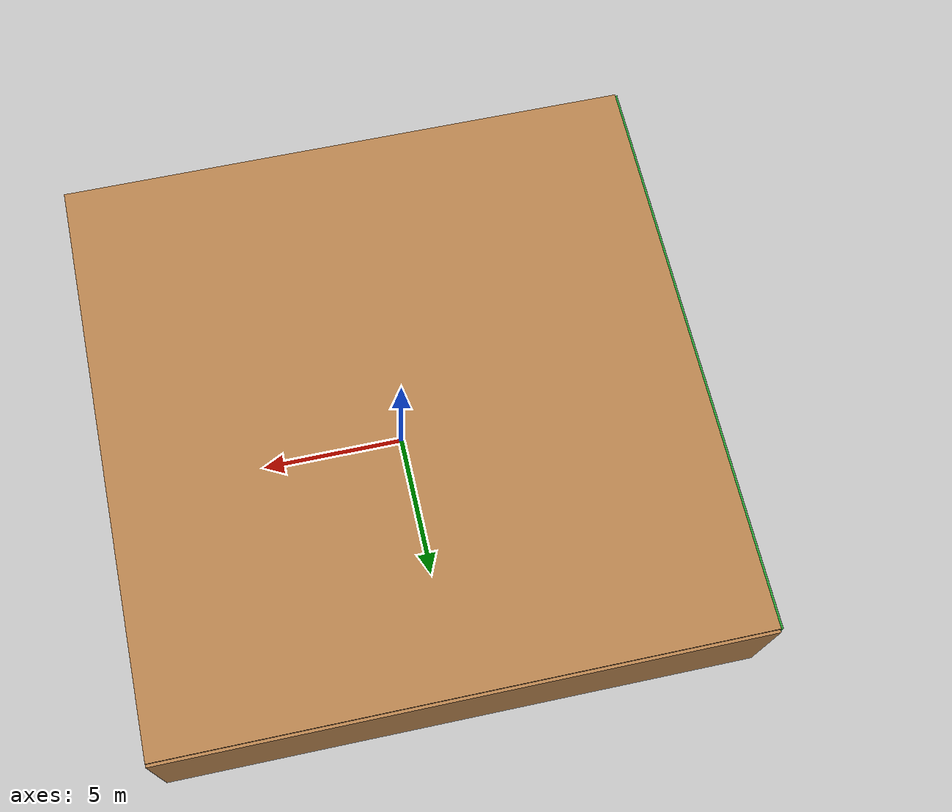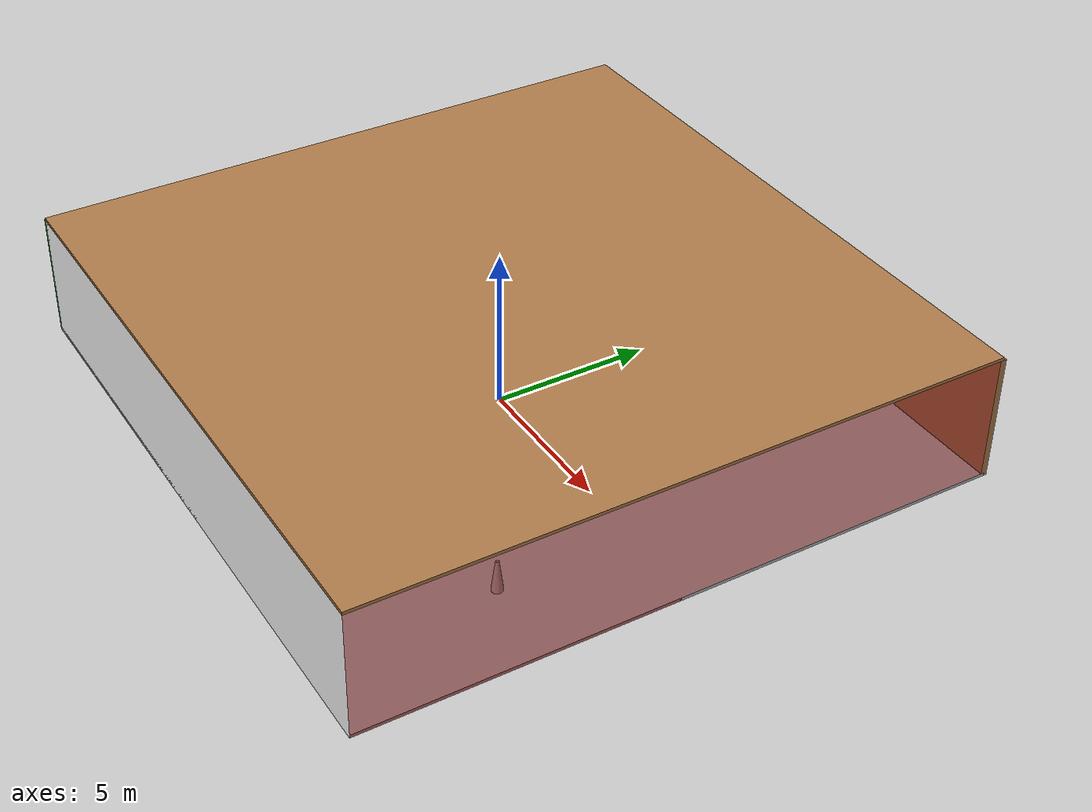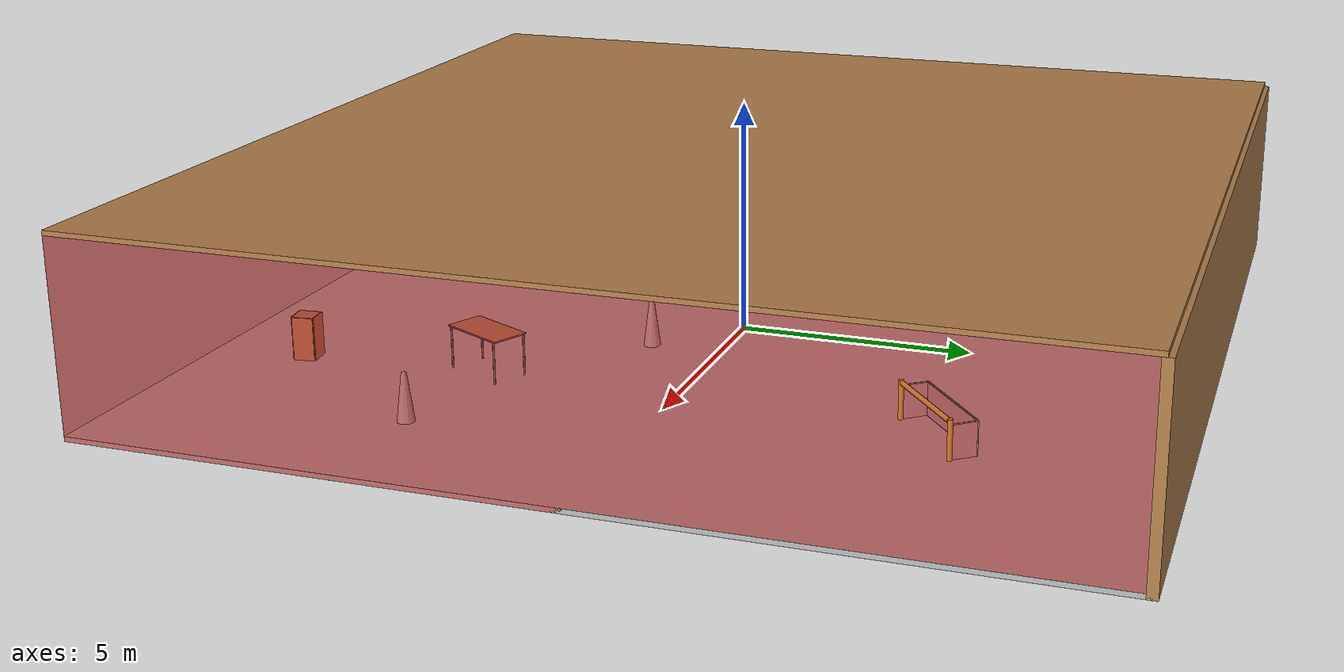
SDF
<sdf version="1.4">
 <world name="default">
  <physics type="ode">
   <max_step_size>0.001</max_step_size>
   <real_time_factor>1</real_time_factor>
   <real_time_update_rate>1000</real_time_update_rate>
   <gravity>0 0 -9.8</gravity>
  </physics>
  <scene><ambient>0.4 0.4 0.4 1</ambient><background>0.7 0.7 0.7 1</background><shadows>1</shadows></scene>
  <model name="Surrounding">
   <static>1</static>
   <link name="Ceiling">
    <collision name="Ceiling_Collision"><geometry><box><size>20 20 0.1</size></box></geometry></collision>
    <visual name="Ceiling_Visual">
     <geometry><box><size>20 20 0.1</size></box></geometry>
     <material>
      <script><uri>file://media/materials/scripts/gazebo.material</uri><name>Gazebo/WoodPallet</name></script>
     </material>
    </visual>
    <pose>0 0 4.05 0 0 0</pose>
   </link>
   <link name="Wall_South">
    <collision name="Wall_South_Collision">
     <geometry><box><size>20 0 4</size></box></geometry>
     <pose>0 0 2 0 -0 0</pose>
    </collision>
    <visual name="Wall_South_Visual">
     <pose>0 0 2 0 -0 0</pose>
     <geometry><box><size>20 0 4</size></box></geometry>
     <material>
      <script><uri>file://media/materials/scripts/gazebo.material</uri><name>Gazebo/White</name></script>
     </material>
    </visual>
    <velocity_decay><linear>0</linear><angular>0</angular></velocity_decay>
    <pose>0 -10 0 0 -0 0</pose>
   </link>
   <link name="Wall_East">
    <collision name="Wall_21_Collision">
     <geometry><box><size>20 0 4</size></box></geometry>
     <pose>0 0 2 0 -0 0</pose>
    </collision>
    <visual name="Wall_21_Visual">
     <pose>0 0 2 0 -0 0</pose>
     <geometry><box><size>20 0 4</size></box></geometry>
     <material>
      <script><uri>file://media/materials/scripts/gazebo.material</uri><name>Gazebo/RedTransparent</name></script>
     </material>
    </visual>
    <velocity_decay><linear>0</linear><angular>0</angular></velocity_decay>
    <pose>10 0 0 0 -0 1.5708</pose>
   </link>
   <link name="Wall_North">
    <collision name="Wall_22_Collision">
     <geometry><box><size>20 0.2 4</size></box></geometry>
     <pose>0 0 2 0 -0 0</pose>
    </collision>
    <visual name="Wall_22_Visual">
     <pose>0 0 2 0 -0 0</pose>
     <geometry><box><size>20 0.2 4</size></box></geometry>
     <material>
      <script><uri>file://media/materials/scripts/gazebo.material</uri><name>Gazebo/Wood</name></script>
     </material>
    </visual>
    <velocity_decay><linear>0</linear><angular>0</angular></velocity_decay>
    <pose>0 10 0 0 -0 0</pose>
   </link>
   <link name="Wall_West">
    <collision name="Wall_23_Collision">
     <geometry><box><size>20 0.2 4</size></box></geometry>
     <pose>0 0 2 0 -0 0</pose>
    </collision>
    <visual name="Wall_23_Visual">
     <pose>0 0 2 0 -0 0</pose>
     <geometry><box><size>20 0.2 4</size></box></geometry>
     <material>
      <script><uri>file://media/materials/scripts/gazebo.material</uri><name>Gazebo/GreenGlow</name></script>
     </material>
    </visual>
    <velocity_decay><linear>0</linear><angular>0</angular></velocity_decay>
    <pose>-10 0 0 0 0 -1.5708</pose>
   </link>
   <link name="Ground_link">
    <collision name="collision">
     <pose>0 0 .05 0 -0 0</pose>
     <geometry><box><size>20 20 0.1</size></box></geometry>
    </collision>
    <visual name="visual">
     <pose>0 0 .05 0 -0 0</pose>
     <geometry><box><size>20 20 0.1</size></box></geometry>
     <material>
      <script><uri>file://media/materials/scripts/gazebo.material</uri><name>Gazebo/PioneerBody</name></script>
     </material>
    </visual>
   </link>
   <static>1</static>
  </model>
  <spherical_coordinates>
   <surface_model>EARTH_WGS84</surface_model>
   <latitude_deg>0</latitude_deg>
   <longitude_deg>0</longitude_deg>
   <elevation>0</elevation>
   <heading_deg>0</heading_deg>
  </spherical_coordinates>
  <light name="lightball_0" type="diffuse">
   <diffuse>0.8 0.8 0.8 1</diffuse>
   <specular>0.2 0.2 0.2 1</specular>
   <attenuation>
    <range>100</range>
    <constant>0.7</constant>
    <linear>0.01</linear>
    <quadratic>0.001</quadratic>
   </attenuation>
   <direction>-0.5 0.1 -0.9</direction>
   <pose>-2.61369002726 -8.68001571329 0.714465781775 0 0 0</pose>
  </light>
  <light name="lightball_1" type="diffuse">
   <diffuse>0.8 0.8 0.8 1</diffuse>
   <specular>0.2 0.2 0.2 1</specular>
   <attenuation>
    <range>100</range>
    <constant>0.7</constant>
    <linear>0.01</linear>
    <quadratic>0.001</quadratic>
   </attenuation>
   <direction>-0.5 0.1 -0.9</direction>
   <pose>8.23953122427 -3.56995046801 1.92498026389 0 0 0</pose>
  </light>
  <light name="lightball_2" type="diffuse">
   <diffuse>0.8 0.8 0.8 1</diffuse>
   <specular>0.2 0.2 0.2 1</specular>
   <attenuation>
    <range>100</range>
    <constant>0.7</constant>
    <linear>0.01</linear>
    <quadratic>0.001</quadratic>
   </attenuation>
   <direction>-0.5 0.1 -0.9</direction>
   <pose>-0.43513747026 -2.27632188886 1.03621120318 0 0 0</pose>
  </light>
  <include>
   <uri>model://robocup_3Dsim_goal</uri>
   <pose>-5.1511036845 4.17481936942 0 0 0 2.41149934483</pose>
  </include>
  <include><uri>model://cabinet</uri><pose>-3.7573629436 7.29733963936 0 0 0 1.72283773038</pose></include>
  <include>
   <uri>model://construction_cone</uri>
   <pose>1.86869322656 -1.41889366155 0 0 0 0.342311457702</pose>
  </include>
  <include><uri>model://cabinet</uri><pose>4.77915331718 -7.90984728061 0 0 0 0.115229161559</pose></include>
  <include><uri>model://table</uri><pose>4.39593298325 -4.00001046037 0 0 0 1.11498066323</pose></include>
  <include>
   <uri>model://robocup_3Dsim_goal</uri>
   <pose>5.06773845349 5.21059801219 0 0 0 2.24621286787</pose>
  </include>
  <include>
   <uri>model://construction_cone</uri>
   <pose>7.30651725315 -4.32165454402 0 0 0 2.35676737805</pose>
  </include>
 </world>
</sdf>

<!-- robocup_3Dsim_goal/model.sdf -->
<sdf version="1.5">
  <model name="robocup_3d_goal">
    <static>true</static>
    <link name="left_post">
      <pose>0 1.05 0.45 0 0 0</pose>
      <collision name="collision">
        <geometry>
          <cylinder>
            <radius>0.05</radius>
            <length>0.9</length>
          </cylinder>
        </geometry>
      </collision>
      <visual name="visual">
        <geometry>
          <cylinder>
            <radius>0.05</radius>
            <length>0.9</length>
          </cylinder>
        </geometry>
        <material>
          <script>
            <uri>file://media/materials/scripts/gazebo.material</uri>
            <name>Gazebo/ZincYellow</name>
          </script>
        </material>
      </visual>
    </link>
    <link name="left_support_horiz_lower">
      <pose>0.30 1.05 0.01 0 0 0</pose>
      <collision name="collision">
        <geometry>
          <box>
            <size>0.50 0.02 0.02</size>
          </box>
        </geometry>
      </collision>
      <visual name="visual">
        <geometry>
          <box>
            <size>0.50 0.02 0.02</size>
          </box>
        </geometry>
        <material>
          <script>
            <uri>file://media/materials/scripts/gazebo.material</uri>
            <name>Gazebo/White</name>
          </script>
        </material>
      </visual>
    </link>
    <link name="left_support_horiz_upper">
      <pose>0.30 1.05 0.79 0 0 0</pose>
      <collision name="collision">
        <geometry>
          <box>
            <size>0.50 0.02 0.02</size>
          </box>
        </geometry>
      </collision>
      <visual name="visual">
        <geometry>
          <box>
            <size>0.50 0.02 0.02</size>
          </box>
        </geometry>
        <material>
          <script>
            <uri>file://media/materials/scripts/gazebo.material</uri>
            <name>Gazebo/White</name>
          </script>
        </material>
      </visual>
    </link>
    <link name="left_support_vertical">
      <pose>0.56 1.05 0.4 0 1.5708 0</pose>
      <collision name="collision">
        <geometry>
          <box>
            <size>0.80 0.02 0.02</size>
          </box>
        </geometry>
      </collision>
      <visual name="visual">
        <geometry>
          <box>
            <size>0.80 0.02 0.02</size>
          </box>
        </geometry>
        <material>
          <script>
            <uri>file://media/materials/scripts/gazebo.material</uri>
            <name>Gazebo/White</name>
          </script>
        </material>
      </visual>
    </link>
    <link name="right_support_horiz_lower">
      <pose>0.30 -1.05 0.01 0 0 0</pose>
      <collision name="collision">
        <geometry>
          <box>
            <size>0.50 0.02 0.02</size>
          </box>
        </geometry>
      </collision>
      <visual name="visual">
        <geometry>
          <box>
            <size>0.50 0.02 0.02</size>
          </box>
        </geometry>
        <material>
          <script>
            <uri>file://media/materials/scripts/gazebo.material</uri>
            <name>Gazebo/White</name>
          </script>
        </material>
      </visual>
    </link>
    <link name="right_support_horiz_upper">
      <pose>0.30 -1.05 0.79 0 0 0</pose>
      <collision name="collision">
        <geometry>
          <box>
            <size>0.50 0.02 0.02</size>
          </box>
        </geometry>
      </collision>
      <visual name="visual">
        <geometry>
          <box>
            <size>0.50 0.02 0.02</size>
          </box>
        </geometry>
        <material>
          <script>
            <uri>file://media/materials/scripts/gazebo.material</uri>
            <name>Gazebo/White</name>
          </script>
        </material>
      </visual>
    </link>
    <link name="right_support_vertical">
      <pose>0.56 -1.05 0.4 0 1.5708 0</pose>
      <collision name="collision">
        <geometry>
          <box>
            <size>0.80 0.02 0.02</size>
          </box>
        </geometry>
      </collision>
      <visual name="visual">
        <geometry>
          <box>
            <size>0.80 0.02 0.02</size>
          </box>
        </geometry>
        <material>
          <script>
            <uri>file://media/materials/scripts/gazebo.material</uri>
            <name>Gazebo/White</name>
          </script>
        </material>
      </visual>
    </link>
    <link name="center_support_horiz_lower">
      <pose>0.56 0 0.01 0 1.5708 0</pose>
      <collision name="collision">
        <geometry>
          <box>
            <size>0.02 2.08 0.02</size>
          </box>
        </geometry>
      </collision>
      <visual name="visual">
        <geometry>
          <box>
            <size>0.02 2.08 0.02</size>
          </box>
        </geometry>
        <material>
          <script>
            <uri>file://media/materials/scripts/gazebo.material</uri>
            <name>Gazebo/White</name>
          </script>
        </material>
      </visual>
    </link>
    <link name="center_support_horiz_upper">
      <pose>0.56 0 0.79 0 1.5708 0</pose>
      <collision name="collision">
        <geometry>
          <box>
            <size>0.02 2.08 0.02</size>
          </box>
        </geometry>
      </collision>
      <visual name="visual">
        <geometry>
          <box>
            <size>0.02 2.08 0.02</size>
          </box>
        </geometry>
        <material>
          <script>
            <uri>file://media/materials/scripts/gazebo.material</uri>
            <name>Gazebo/White</name>
          </script>
        </material>
      </visual>
    </link>
    <link name="right_post">
      <pose>0 -1.05 0.45 0 0 0</pose>
      <collision name="collision">
        <geometry>
          <cylinder>
            <radius>0.05</radius>
            <length>0.9</length>
          </cylinder>
        </geometry>
      </collision>
      <visual name="visual">
        <geometry>
          <cylinder>
            <radius>0.05</radius>
            <length>0.9</length>
          </cylinder>
        </geometry>
        <material>
          <script>
            <uri>file://media/materials/scripts/gazebo.material</uri>
            <name>Gazebo/ZincYellow</name>
          </script>
        </material>
      </visual>
    </link>
    <link name="crossbar">
      <pose>0 0 0.85 1.57 1.57 0</pose>
      <collision name="collision">
        <geometry>
          <cylinder>
            <radius>0.05</radius>
            <length>2.0</length>
          </cylinder>
        </geometry>
      </collision>
      <visual name="visual">
        <geometry>
          <cylinder>
            <radius>0.05</radius>
            <length>2.0</length>
          </cylinder>
        </geometry>
        <material>
          <script>
            <uri>file://media/materials/scripts/gazebo.material</uri>
            <name>Gazebo/ZincYellow</name>
          </script>
        </material>
      </visual>
    </link>
    <link name="center_net">
      <pose>0.56 0 0.40 0 0 0</pose>
      <collision name="collision">
        <geometry>
          <box>
            <size>0.01 2.1 0.80</size>
          </box>
        </geometry>
      </collision>
      <visual name="visual">
        <geometry>
          <box>
            <size>0.01 2.1 0.80</size>
          </box>
        </geometry>
        <material>
          <script>
            <uri>model://../model_source/models/robocup09_spl_field/materials/scripts/</uri>
            <uri>model://../model_source/models/robocup09_spl_field/materials/textures/</uri>
            <name>RoboCup/Net</name>
          </script>
        </material>
      </visual>
    </link>
    <link name="left_net">
      <pose>0.30 1.05 0.40 0 0 0</pose>
      <collision name="collision">
        <geometry>
          <box>
            <size>0.50 0.01 0.76</size>
          </box>
        </geometry>
      </collision>
      <visual name="visual">
        <geometry>
          <box>
            <size>0.50 0.01 0.76</size>
          </box>
        </geometry>
        <material>
          <script>
            <uri>model://../model_source/models/robocup09_spl_field/materials/scripts/</uri>
            <uri>model://../model_source/models/robocup09_spl_field/materials/textures/</uri>
            <name>RoboCup/Net</name>
          </script>
        </material>
      </visual>
    </link>
    <link name="right_net">
      <pose>0.30 -1.05 0.40 0 0 0</pose>
      <collision name="collision">
        <geometry>
          <box>
            <size>0.50 0.01 0.76</size>
          </box>
        </geometry>
      </collision>
      <visual name="visual">
        <geometry>
          <box>
            <size>0.50 0.01 0.76</size>
          </box>
        </geometry>
        <material>
          <script>
            <uri>model://../model_source/models/robocup09_spl_field/materials/scripts/</uri>
            <uri>model://../model_source/models/robocup09_spl_field/materials/textures/</uri>
            <name>RoboCup/Net</name>
          </script>
        </material>
      </visual>
    </link>
  </model>
</sdf>

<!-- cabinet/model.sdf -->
<sdf version="1.5">
  <model name="cabinet">
    <static>true</static>
    <link name="cabinet_bottom_plate">
      <inertial>
        <pose>0 0 -1 0 0 0</pose>
        <inertia>
          <ixx>2.050000</ixx>
          <ixy>0</ixy>
          <ixz>0</ixz>
          <iyy>2.050000</iyy>
          <iyz>0</iyz>
          <izz>2.050000</izz>
        </inertia>
        <mass>25.000000</mass>
      </inertial>
      <collision name="cabinet_bottom_plate_geom">
        <pose>0 0 0.010000 0 0 0</pose>
        <geometry>
          <box>
            <size>0.450000 0.450000 0.020000</size>
          </box>
        </geometry>
      </collision>
      <visual name="cabinet_bottom_plate_geom_visual">
        <pose>0 0 0.010000 0 0 0</pose>
        <geometry>
          <box>
            <size>0.450000 0.450000 0.020000</size>
          </box>
        </geometry>
        <material>
          <script>
            <uri>model://media/materials/scripts/gazebo.material</uri>
            <name>Gazebo/Wood</name>
          </script>
        </material>
      </visual>
      <collision name="cabinet_bottom_plate_geom_cabinet_back_plate">
        <pose>0.235000 0 0.510000 0 0 0</pose>
        <geometry>
          <box>
            <size>0.020000 0.450000 1.020000</size>
          </box>
        </geometry>
      </collision>
      <visual name="cabinet_bottom_plate_geom_cabinet_back_plate_visual">
        <pose>0.235000 0 0.510000 0 0 0</pose>
        <geometry>
          <box>
            <size>0.020000 0.450000 1.020000</size>
          </box>
        </geometry>
        <material>
          <script>
            <uri>model://media/materials/scripts/gazebo.material</uri>
            <name>Gazebo/Wood</name>
          </script>
        </material>
      </visual>
      <collision name="cabinet_bottom_plate_geom_cabinet_left_plate">
        <pose>0 0.235000 0.510000 0 0 0</pose>
        <geometry>
          <box>
            <size>0.450000 0.020000 1.020000</size>
          </box>
        </geometry>
      </collision>
      <visual name="cabinet_bottom_plate_geom_cabinet_left_plate_visual">
        <pose>0 0.235000 0.510000 0 0 0</pose>
        <geometry>
          <box>
            <size>0.450000 0.020000 1.020000</size>
          </box>
        </geometry>
        <material>
          <script>
            <uri>model://media/materials/scripts/gazebo.material</uri>
            <name>Gazebo/Wood</name>
          </script>
        </material>
      </visual>
      <collision name="cabinet_bottom_plate_geom_cabinet_middle_plate">
        <pose>0 0 0.510000 0 0 0</pose>
        <geometry>
          <box>
            <size>0.450000 0.450000 0.020000</size>
          </box>
        </geometry>
      </collision>
      <visual name="cabinet_bottom_plate_geom_cabinet_middle_plate_visual">
        <pose>0 0 0.510000 0 0 0</pose>
        <geometry>
          <box>
            <size>0.450000 0.450000 0.020000</size>
          </box>
        </geometry>
        <material>
          <script>
            <uri>model://media/materials/scripts/gazebo.material</uri>
            <name>Gazebo/Wood</name>
          </script>
        </material>
      </visual>
      <collision name="cabinet_bottom_plate_geom_cabinet_right_plate">
        <pose>0 -0.235000 0.510000 0 0 0</pose>
        <geometry>
          <box>
            <size>0.450000 0.020000 1.020000</size>
          </box>
        </geometry>
      </collision>
      <visual name="cabinet_bottom_plate_geom_cabinet_right_plate_visual">
        <pose>0 -0.235000 0.510000 0 0 0</pose>
        <geometry>
          <box>
            <size>0.450000 0.020000 1.020000</size>
          </box>
        </geometry>
        <material>
          <script>
            <uri>model://media/materials/scripts/gazebo.material</uri>
            <name>Gazebo/Wood</name>
          </script>
        </material>
      </visual>
      <collision name="cabinet_bottom_plate_geom_cabinet_top_plate">
        <pose>0 0 1.010000 0 0 0</pose>
        <geometry>
          <box>
            <size>0.450000 0.450000 0.020000</size>
          </box>
        </geometry>
      </collision>
      <visual name="cabinet_bottom_plate_geom_cabinet_top_plate_visual">
        <pose>0 0 1.010000 0 0 0</pose>
        <geometry>
          <box>
            <size>0.450000 0.450000 0.020000</size>
          </box>
        </geometry>
        <material>
          <script>
            <uri>model://media/materials/scripts/gazebo.material</uri>
            <name>Gazebo/Wood</name>
          </script>
        </material>
      </visual>
    </link>
  </model>
</sdf>

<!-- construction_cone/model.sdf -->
<sdf version="1.5">
  <model name="Construction Cone">
    <link name="link">
      <collision name="collision">
        <geometry>
          <mesh>
            <scale>10 10 10</scale>
            <uri>file://isr-testbed/construction_cone/meshes/construction_cone.dae</uri>
          </mesh>
        </geometry>
      </collision>
      <visual name="visual">
        <geometry>
          <mesh>
            <scale>10 10 10</scale>
            <uri>file://isr-testbed/construction_cone/meshes/construction_cone.dae</uri>
          </mesh>
        </geometry>
      </visual>
    </link>
  </model>
</sdf>

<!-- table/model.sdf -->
<sdf version="1.5">
  <model name="table">
    <static>true</static>
    <link name="link">
      <collision name="surface">
        <pose>0 0 1.0 0 0 0</pose>
        <geometry>
          <box>
            <size>1.5 0.8 0.03</size>
          </box>
        </geometry>
        <surface>
          <friction>
            <ode>
              <mu>0.6</mu>
              <mu2>0.6</mu2>
            </ode>
          </friction>
        </surface>
      </collision>
      <visual name="visual1">
        <pose>0 0 1.0 0 0 0</pose>
        <geometry>
          <box>
            <size>1.5 0.8 0.03</size>
          </box>
        </geometry>
        <material>
          <script>
            <uri>model://media/materials/scripts/gazebo.material</uri>
            <name>Gazebo/Wood</name>
          </script>
        </material>
      </visual>
      <collision name="front_left_leg">
        <pose>0.68 0.38 0.5 0 0 0</pose>
        <geometry>
          <cylinder>
            <radius>0.02</radius>
            <length>1.0</length>
          </cylinder>
        </geometry>
      </collision>
      <visual name="front_left_leg">
        <pose>0.68 0.38 0.5 0 0 0</pose>
        <geometry>
          <cylinder>
            <radius>0.02</radius>
            <length>1.0</length>
          </cylinder>
        </geometry>
        <material>
          <script>
            <uri>model://media/materials/scripts/gazebo.material</uri>
            <name>Gazebo/Grey</name>
          </script>
        </material>
      </visual>
      <collision name="front_right_leg">
        <pose>0.68 -0.38 0.5 0 0 0</pose>
        <geometry>
          <cylinder>
            <radius>0.02</radius>
            <length>1.0</length>
          </cylinder>
        </geometry>
      </collision>
      <visual name="front_right_leg">
        <pose>0.68 -0.38 0.5 0 0 0</pose>
        <geometry>
          <cylinder>
            <radius>0.02</radius>
            <length>1.0</length>
          </cylinder>
        </geometry>
        <material>
          <script>
            <uri>model://media/materials/scripts/gazebo.material</uri>
            <name>Gazebo/Grey</name>
          </script>
        </material>
      </visual>
      <collision name="back_right_leg">
        <pose>-0.68 -0.38 0.5 0 0 0</pose>
        <geometry>
          <cylinder>
            <radius>0.02</radius>
            <length>1.0</length>
          </cylinder>
        </geometry>
      </collision>
      <visual name="back_right_leg">
        <pose>-0.68 -0.38 0.5 0 0 0</pose>
        <geometry>
          <cylinder>
            <radius>0.02</radius>
            <length>1.0</length>
          </cylinder>
        </geometry>
        <material>
          <script>
            <uri>model://media/materials/scripts/gazebo.material</uri>
            <name>Gazebo/Grey</name>
          </script>
        </material>
      </visual>
      <collision name="back_left_leg">
        <pose>-0.68 0.38 0.5 0 0 0</pose>
        <geometry>
          <cylinder>
            <radius>0.02</radius>
            <length>1.0</length>
          </cylinder>
        </geometry>
      </collision>
      <visual name="back_left_leg">
        <pose>-0.68 0.38 0.5 0 0 0</pose>
        <geometry>
          <cylinder>
            <radius>0.02</radius>
            <length>1.0</length>
          </cylinder>
        </geometry>
        <material>
          <script>
            <uri>model://media/materials/scripts/gazebo.material</uri>
            <name>Gazebo/Grey</name>
          </script>
        </material>
      </visual>
    </link>
  </model>
</sdf>
